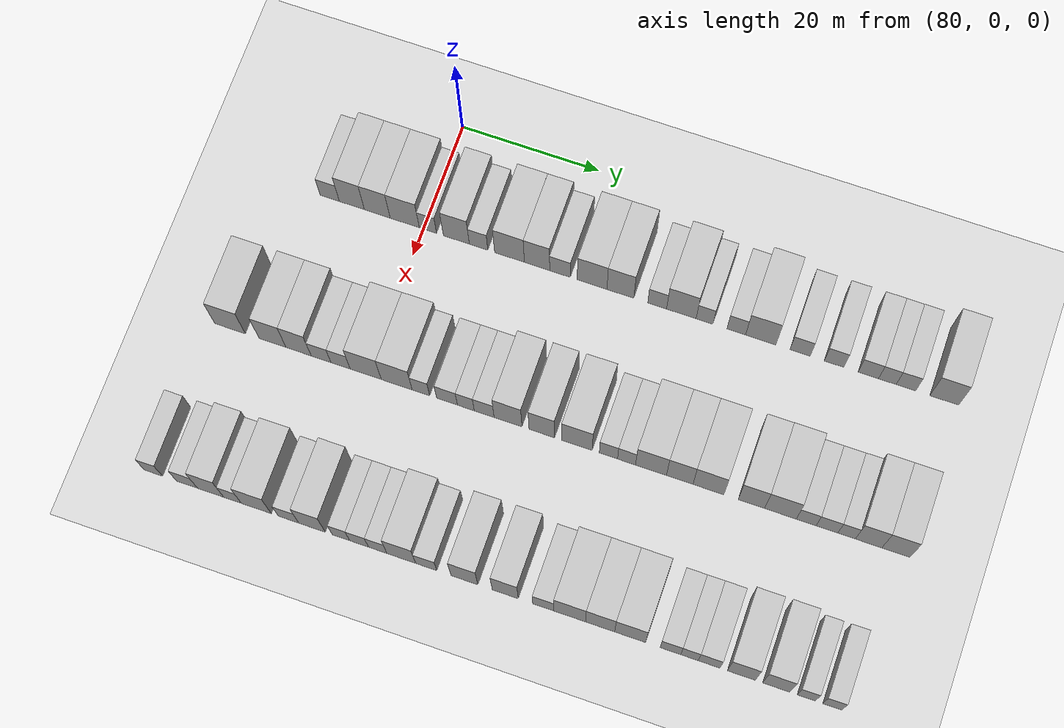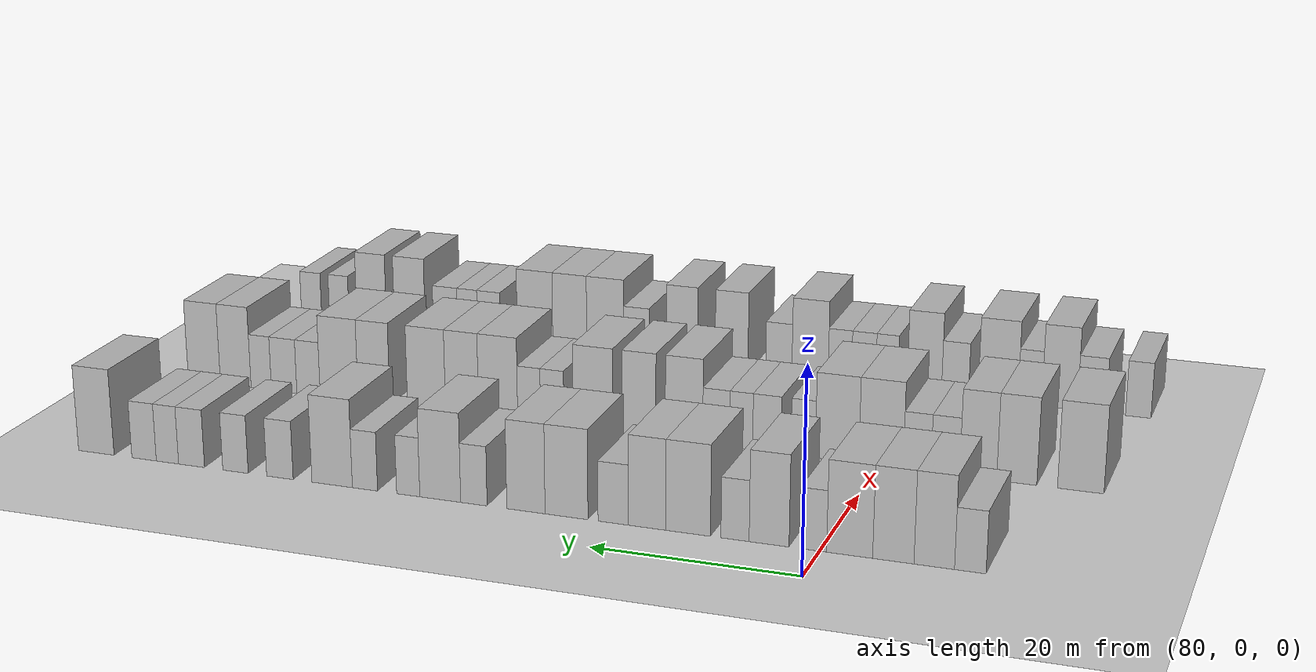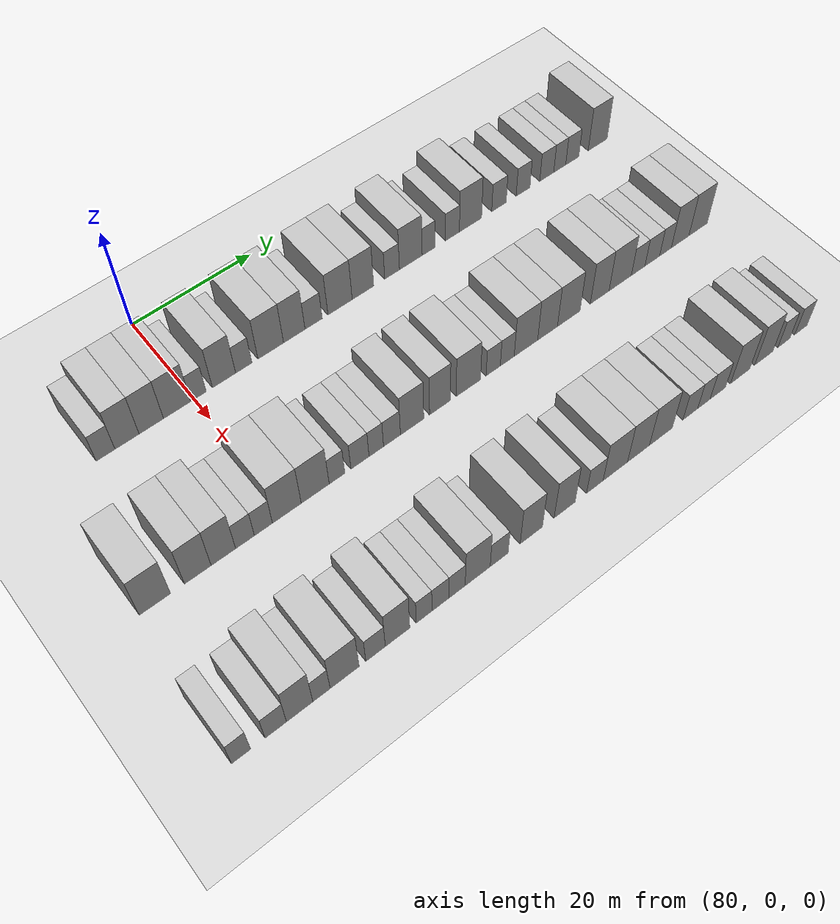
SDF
<sdf version="1.6">
 <world name="default">
  <include>
   <name>ground_plane_2</name>
   <uri>model://HANNAS_ground_plane</uri>
   <pose>100 0 0  0 0 0</pose>
  </include>
  <model name="building_663">
   <static>1</static>
   <pose>91.0000 -13.7585 0 0.000000 0.000000 0.000000</pose>
   <link name="link">
    <pose>0 0 3.00 0 0 0</pose>
    <collision name="collision"><geometry><box><size>10.0000 2.8491 6.0000</size></box></geometry></collision>
    <visual name="visual">
     <cast_shadows>0</cast_shadows>
     <geometry><box><size>10.0000 2.8491 6.0000</size></box></geometry>
     <material>
      <script>
       <uri>model://HANNAS_wall/materials/scripts</uri>
       <uri>model://HANNAS_wall/materials/textures</uri>
       <name>vrc/HANNAS_wall</name>
      </script>
     </material>
    </visual>
   </link>
  </model>
  <model name="building_664">
   <static>1</static>
   <pose>91.0000 -10.4909 0 0.000000 0.000000 0.000000</pose>
   <link name="link">
    <pose>0 0 4.50 0 0 0</pose>
    <collision name="collision"><geometry><box><size>10.0000 3.6860 9.0000</size></box></geometry></collision>
    <visual name="visual">
     <cast_shadows>0</cast_shadows>
     <geometry><box><size>10.0000 3.6860 9.0000</size></box></geometry>
     <material>
      <script>
       <uri>model://HANNAS_wall/materials/scripts</uri>
       <uri>model://HANNAS_wall/materials/textures</uri>
       <name>vrc/HANNAS_wall</name>
      </script>
     </material>
    </visual>
   </link>
  </model>
  <model name="building_665">
   <static>1</static>
   <pose>91.0000 -6.7507 0 0.000000 0.000000 0.000000</pose>
   <link name="link">
    <pose>0 0 4.50 0 0 0</pose>
    <collision name="collision"><geometry><box><size>10.0000 3.7944 9.0000</size></box></geometry></collision>
    <visual name="visual">
     <cast_shadows>0</cast_shadows>
     <geometry><box><size>10.0000 3.7944 9.0000</size></box></geometry>
     <material>
      <script>
       <uri>model://HANNAS_wall/materials/scripts</uri>
       <uri>model://HANNAS_wall/materials/textures</uri>
       <name>vrc/HANNAS_wall</name>
      </script>
     </material>
    </visual>
   </link>
  </model>
  <model name="building_666">
   <static>1</static>
   <pose>91.0000 -2.7150 0 0.000000 0.000000 0.000000</pose>
   <link name="link">
    <pose>0 0 4.50 0 0 0</pose>
    <collision name="collision"><geometry><box><size>10.0000 4.2770 9.0000</size></box></geometry></collision>
    <visual name="visual">
     <cast_shadows>0</cast_shadows>
     <geometry><box><size>10.0000 4.2770 9.0000</size></box></geometry>
     <material>
      <script>
       <uri>model://HANNAS_wall/materials/scripts</uri>
       <uri>model://HANNAS_wall/materials/textures</uri>
       <name>vrc/HANNAS_wall</name>
      </script>
     </material>
    </visual>
   </link>
  </model>
  <model name="building_667">
   <static>1</static>
   <pose>91.0000 0.6828 0 0.000000 0.000000 0.000000</pose>
   <link name="link">
    <pose>0 0 3.00 0 0 0</pose>
    <collision name="collision"><geometry><box><size>10.0000 2.5185 6.0000</size></box></geometry></collision>
    <visual name="visual">
     <cast_shadows>0</cast_shadows>
     <geometry><box><size>10.0000 2.5185 6.0000</size></box></geometry>
     <material>
      <script>
       <uri>model://HANNAS_wall/materials/scripts</uri>
       <uri>model://HANNAS_wall/materials/textures</uri>
       <name>vrc/HANNAS_wall</name>
      </script>
     </material>
    </visual>
   </link>
  </model>
  <model name="building_668">
   <static>1</static>
   <pose>91.0000 4.8339 0 0.000000 0.000000 0.000000</pose>
   <link name="link">
    <pose>0 0 4.50 0 0 0</pose>
    <collision name="collision"><geometry><box><size>10.0000 3.7837 9.0000</size></box></geometry></collision>
    <visual name="visual">
     <cast_shadows>0</cast_shadows>
     <geometry><box><size>10.0000 3.7837 9.0000</size></box></geometry>
     <material>
      <script>
       <uri>model://HANNAS_wall/materials/scripts</uri>
       <uri>model://HANNAS_wall/materials/textures</uri>
       <name>vrc/HANNAS_wall</name>
      </script>
     </material>
    </visual>
   </link>
  </model>
  <model name="building_669">
   <static>1</static>
   <pose>91.0000 8.0732 0 0.000000 0.000000 0.000000</pose>
   <link name="link">
    <pose>0 0 3.00 0 0 0</pose>
    <collision name="collision"><geometry><box><size>10.0000 2.6949 6.0000</size></box></geometry></collision>
    <visual name="visual">
     <cast_shadows>0</cast_shadows>
     <geometry><box><size>10.0000 2.6949 6.0000</size></box></geometry>
     <material>
      <script>
       <uri>model://HANNAS_wall/materials/scripts</uri>
       <uri>model://HANNAS_wall/materials/textures</uri>
       <name>vrc/HANNAS_wall</name>
      </script>
     </material>
    </visual>
   </link>
  </model>
  <model name="building_670">
   <static>1</static>
   <pose>91.0000 12.5786 0 0.000000 0.000000 0.000000</pose>
   <link name="link">
    <pose>0 0 4.50 0 0 0</pose>
    <collision name="collision"><geometry><box><size>10.0000 4.3159 9.0000</size></box></geometry></collision>
    <visual name="visual">
     <cast_shadows>0</cast_shadows>
     <geometry><box><size>10.0000 4.3159 9.0000</size></box></geometry>
     <material>
      <script>
       <uri>model://HANNAS_wall/materials/scripts</uri>
       <uri>model://HANNAS_wall/materials/textures</uri>
       <name>vrc/HANNAS_wall</name>
      </script>
     </material>
    </visual>
   </link>
  </model>
  <model name="building_671">
   <static>1</static>
   <pose>91.0000 16.5746 0 0.000000 0.000000 0.000000</pose>
   <link name="link">
    <pose>0 0 4.50 0 0 0</pose>
    <collision name="collision"><geometry><box><size>10.0000 3.6760 9.0000</size></box></geometry></collision>
    <visual name="visual">
     <cast_shadows>0</cast_shadows>
     <geometry><box><size>10.0000 3.6760 9.0000</size></box></geometry>
     <material>
      <script>
       <uri>model://HANNAS_wall/materials/scripts</uri>
       <uri>model://HANNAS_wall/materials/textures</uri>
       <name>vrc/HANNAS_wall</name>
      </script>
     </material>
    </visual>
   </link>
  </model>
  <model name="building_672">
   <static>1</static>
   <pose>91.0000 19.9013 0 0.000000 0.000000 0.000000</pose>
   <link name="link">
    <pose>0 0 3.00 0 0 0</pose>
    <collision name="collision"><geometry><box><size>10.0000 2.9775 6.0000</size></box></geometry></collision>
    <visual name="visual">
     <cast_shadows>0</cast_shadows>
     <geometry><box><size>10.0000 2.9775 6.0000</size></box></geometry>
     <material>
      <script>
       <uri>model://HANNAS_wall/materials/scripts</uri>
       <uri>model://HANNAS_wall/materials/textures</uri>
       <name>vrc/HANNAS_wall</name>
      </script>
     </material>
    </visual>
   </link>
  </model>
  <model name="building_673">
   <static>1</static>
   <pose>91.0000 24.5314 0 0.000000 0.000000 0.000000</pose>
   <link name="link">
    <pose>0 0 4.50 0 0 0</pose>
    <collision name="collision"><geometry><box><size>10.0000 4.2827 9.0000</size></box></geometry></collision>
    <visual name="visual">
     <cast_shadows>0</cast_shadows>
     <geometry><box><size>10.0000 4.2827 9.0000</size></box></geometry>
     <material>
      <script>
       <uri>model://HANNAS_wall/materials/scripts</uri>
       <uri>model://HANNAS_wall/materials/textures</uri>
       <name>vrc/HANNAS_wall</name>
      </script>
     </material>
    </visual>
   </link>
  </model>
  <model name="building_674">
   <static>1</static>
   <pose>91.0000 28.6038 0 0.000000 0.000000 0.000000</pose>
   <link name="link">
    <pose>0 0 4.50 0 0 0</pose>
    <collision name="collision"><geometry><box><size>10.0000 3.8620 9.0000</size></box></geometry></collision>
    <visual name="visual">
     <cast_shadows>0</cast_shadows>
     <geometry><box><size>10.0000 3.8620 9.0000</size></box></geometry>
     <material>
      <script>
       <uri>model://HANNAS_wall/materials/scripts</uri>
       <uri>model://HANNAS_wall/materials/textures</uri>
       <name>vrc/HANNAS_wall</name>
      </script>
     </material>
    </visual>
   </link>
  </model>
  <model name="building_675">
   <static>1</static>
   <pose>91.0000 33.8855 0 0.000000 0.000000 0.000000</pose>
   <link name="link">
    <pose>0 0 3.00 0 0 0</pose>
    <collision name="collision"><geometry><box><size>10.0000 2.7014 6.0000</size></box></geometry></collision>
    <visual name="visual">
     <cast_shadows>0</cast_shadows>
     <geometry><box><size>10.0000 2.7014 6.0000</size></box></geometry>
     <material>
      <script>
       <uri>model://HANNAS_wall/materials/scripts</uri>
       <uri>model://HANNAS_wall/materials/textures</uri>
       <name>vrc/HANNAS_wall</name>
      </script>
     </material>
    </visual>
   </link>
  </model>
  <model name="building_676">
   <static>1</static>
   <pose>91.0000 37.3459 0 0.000000 0.000000 0.000000</pose>
   <link name="link">
    <pose>0 0 4.50 0 0 0</pose>
    <collision name="collision"><geometry><box><size>10.0000 4.2194 9.0000</size></box></geometry></collision>
    <visual name="visual">
     <cast_shadows>0</cast_shadows>
     <geometry><box><size>10.0000 4.2194 9.0000</size></box></geometry>
     <material>
      <script>
       <uri>model://HANNAS_wall/materials/scripts</uri>
       <uri>model://HANNAS_wall/materials/textures</uri>
       <name>vrc/HANNAS_wall</name>
      </script>
     </material>
    </visual>
   </link>
  </model>
  <model name="building_677">
   <static>1</static>
   <pose>91.0000 40.6593 0 0.000000 0.000000 0.000000</pose>
   <link name="link">
    <pose>0 0 3.00 0 0 0</pose>
    <collision name="collision"><geometry><box><size>10.0000 2.4073 6.0000</size></box></geometry></collision>
    <visual name="visual">
     <cast_shadows>0</cast_shadows>
     <geometry><box><size>10.0000 2.4073 6.0000</size></box></geometry>
     <material>
      <script>
       <uri>model://HANNAS_wall/materials/scripts</uri>
       <uri>model://HANNAS_wall/materials/textures</uri>
       <name>vrc/HANNAS_wall</name>
      </script>
     </material>
    </visual>
   </link>
  </model>
  <model name="building_678">
   <static>1</static>
   <pose>91.0000 45.1895 0 0.000000 0.000000 0.000000</pose>
   <link name="link">
    <pose>0 0 3.00 0 0 0</pose>
    <collision name="collision"><geometry><box><size>10.0000 2.6532 6.0000</size></box></geometry></collision>
    <visual name="visual">
     <cast_shadows>0</cast_shadows>
     <geometry><box><size>10.0000 2.6532 6.0000</size></box></geometry>
     <material>
      <script>
       <uri>model://HANNAS_wall/materials/scripts</uri>
       <uri>model://HANNAS_wall/materials/textures</uri>
       <name>vrc/HANNAS_wall</name>
      </script>
     </material>
    </visual>
   </link>
  </model>
  <model name="building_679">
   <static>1</static>
   <pose>91.0000 48.6653 0 0.000000 0.000000 0.000000</pose>
   <link name="link">
    <pose>0 0 4.50 0 0 0</pose>
    <collision name="collision"><geometry><box><size>10.0000 4.2983 9.0000</size></box></geometry></collision>
    <visual name="visual">
     <cast_shadows>0</cast_shadows>
     <geometry><box><size>10.0000 4.2983 9.0000</size></box></geometry>
     <material>
      <script>
       <uri>model://HANNAS_wall/materials/scripts</uri>
       <uri>model://HANNAS_wall/materials/textures</uri>
       <name>vrc/HANNAS_wall</name>
      </script>
     </material>
    </visual>
   </link>
  </model>
  <model name="building_680">
   <static>1</static>
   <pose>91.0000 54.2449 0 0.000000 0.000000 0.000000</pose>
   <link name="link">
    <pose>0 0 3.00 0 0 0</pose>
    <collision name="collision"><geometry><box><size>10.0000 2.8609 6.0000</size></box></geometry></collision>
    <visual name="visual">
     <cast_shadows>0</cast_shadows>
     <geometry><box><size>10.0000 2.8609 6.0000</size></box></geometry>
     <material>
      <script>
       <uri>model://HANNAS_wall/materials/scripts</uri>
       <uri>model://HANNAS_wall/materials/textures</uri>
       <name>vrc/HANNAS_wall</name>
      </script>
     </material>
    </visual>
   </link>
  </model>
  <model name="building_681">
   <static>1</static>
   <pose>91.0000 59.0615 0 0.000000 0.000000 0.000000</pose>
   <link name="link">
    <pose>0 0 3.00 0 0 0</pose>
    <collision name="collision"><geometry><box><size>10.0000 2.7723 6.0000</size></box></geometry></collision>
    <visual name="visual">
     <cast_shadows>0</cast_shadows>
     <geometry><box><size>10.0000 2.7723 6.0000</size></box></geometry>
     <material>
      <script>
       <uri>model://HANNAS_wall/materials/scripts</uri>
       <uri>model://HANNAS_wall/materials/textures</uri>
       <name>vrc/HANNAS_wall</name>
      </script>
     </material>
    </visual>
   </link>
  </model>
  <model name="building_682">
   <static>1</static>
   <pose>91.0000 63.8812 0 0.000000 0.000000 0.000000</pose>
   <link name="link">
    <pose>0 0 3.00 0 0 0</pose>
    <collision name="collision"><geometry><box><size>10.0000 2.8670 6.0000</size></box></geometry></collision>
    <visual name="visual">
     <cast_shadows>0</cast_shadows>
     <geometry><box><size>10.0000 2.8670 6.0000</size></box></geometry>
     <material>
      <script>
       <uri>model://HANNAS_wall/materials/scripts</uri>
       <uri>model://HANNAS_wall/materials/textures</uri>
       <name>vrc/HANNAS_wall</name>
      </script>
     </material>
    </visual>
   </link>
  </model>
  <model name="building_683">
   <static>1</static>
   <pose>91.0000 66.5522 0 0.000000 0.000000 0.000000</pose>
   <link name="link">
    <pose>0 0 3.00 0 0 0</pose>
    <collision name="collision"><geometry><box><size>10.0000 2.4750 6.0000</size></box></geometry></collision>
    <visual name="visual">
     <cast_shadows>0</cast_shadows>
     <geometry><box><size>10.0000 2.4750 6.0000</size></box></geometry>
     <material>
      <script>
       <uri>model://HANNAS_wall/materials/scripts</uri>
       <uri>model://HANNAS_wall/materials/textures</uri>
       <name>vrc/HANNAS_wall</name>
      </script>
     </material>
    </visual>
   </link>
  </model>
  <model name="building_684">
   <static>1</static>
   <pose>91.0000 69.1561 0 0.000000 0.000000 0.000000</pose>
   <link name="link">
    <pose>0 0 3.00 0 0 0</pose>
    <collision name="collision"><geometry><box><size>10.0000 2.7329 6.0000</size></box></geometry></collision>
    <visual name="visual">
     <cast_shadows>0</cast_shadows>
     <geometry><box><size>10.0000 2.7329 6.0000</size></box></geometry>
     <material>
      <script>
       <uri>model://HANNAS_wall/materials/scripts</uri>
       <uri>model://HANNAS_wall/materials/textures</uri>
       <name>vrc/HANNAS_wall</name>
      </script>
     </material>
    </visual>
   </link>
  </model>
  <model name="building_685">
   <static>1</static>
   <pose>91.0000 74.5306 0 0.000000 0.000000 0.000000</pose>
   <link name="link">
    <pose>0 0 4.50 0 0 0</pose>
    <collision name="collision"><geometry><box><size>10.0000 4.0160 9.0000</size></box></geometry></collision>
    <visual name="visual">
     <cast_shadows>0</cast_shadows>
     <geometry><box><size>10.0000 4.0160 9.0000</size></box></geometry>
     <material>
      <script>
       <uri>model://HANNAS_wall/materials/scripts</uri>
       <uri>model://HANNAS_wall/materials/textures</uri>
       <name>vrc/HANNAS_wall</name>
      </script>
     </material>
    </visual>
   </link>
  </model>
  <model name="building_831">
   <static>1</static>
   <pose>113.0000 -19.8376 0 0.000000 0.000000 0.000000</pose>
   <link name="link">
    <pose>0 0 4.50 0 0 0</pose>
    <collision name="collision"><geometry><box><size>10.0000 4.4645 9.0000</size></box></geometry></collision>
    <visual name="visual">
     <cast_shadows>0</cast_shadows>
     <geometry><box><size>10.0000 4.4645 9.0000</size></box></geometry>
     <material>
      <script>
       <uri>model://HANNAS_wall/materials/scripts</uri>
       <uri>model://HANNAS_wall/materials/textures</uri>
       <name>vrc/HANNAS_wall</name>
      </script>
     </material>
    </visual>
   </link>
  </model>
  <model name="building_832">
   <static>1</static>
   <pose>113.0000 -13.6461 0 0.000000 0.000000 0.000000</pose>
   <link name="link">
    <pose>0 0 4.50 0 0 0</pose>
    <collision name="collision"><geometry><box><size>10.0000 3.9185 9.0000</size></box></geometry></collision>
    <visual name="visual">
     <cast_shadows>0</cast_shadows>
     <geometry><box><size>10.0000 3.9185 9.0000</size></box></geometry>
     <material>
      <script>
       <uri>model://HANNAS_wall/materials/scripts</uri>
       <uri>model://HANNAS_wall/materials/textures</uri>
       <name>vrc/HANNAS_wall</name>
      </script>
     </material>
    </visual>
   </link>
  </model>
  <model name="building_833">
   <static>1</static>
   <pose>113.0000 -9.8637 0 0.000000 0.000000 0.000000</pose>
   <link name="link">
    <pose>0 0 4.50 0 0 0</pose>
    <collision name="collision"><geometry><box><size>10.0000 3.6464 9.0000</size></box></geometry></collision>
    <visual name="visual">
     <cast_shadows>0</cast_shadows>
     <geometry><box><size>10.0000 3.6464 9.0000</size></box></geometry>
     <material>
      <script>
       <uri>model://HANNAS_wall/materials/scripts</uri>
       <uri>model://HANNAS_wall/materials/textures</uri>
       <name>vrc/HANNAS_wall</name>
      </script>
     </material>
    </visual>
   </link>
  </model>
  <model name="building_834">
   <static>1</static>
   <pose>113.0000 -6.6188 0 0.000000 0.000000 0.000000</pose>
   <link name="link">
    <pose>0 0 3.00 0 0 0</pose>
    <collision name="collision"><geometry><box><size>10.0000 2.8435 6.0000</size></box></geometry></collision>
    <visual name="visual">
     <cast_shadows>0</cast_shadows>
     <geometry><box><size>10.0000 2.8435 6.0000</size></box></geometry>
     <material>
      <script>
       <uri>model://HANNAS_wall/materials/scripts</uri>
       <uri>model://HANNAS_wall/materials/textures</uri>
       <name>vrc/HANNAS_wall</name>
      </script>
     </material>
    </visual>
   </link>
  </model>
  <model name="building_835">
   <static>1</static>
   <pose>113.0000 -3.8131 0 0.000000 0.000000 0.000000</pose>
   <link name="link">
    <pose>0 0 3.00 0 0 0</pose>
    <collision name="collision"><geometry><box><size>10.0000 2.7679 6.0000</size></box></geometry></collision>
    <visual name="visual">
     <cast_shadows>0</cast_shadows>
     <geometry><box><size>10.0000 2.7679 6.0000</size></box></geometry>
     <material>
      <script>
       <uri>model://HANNAS_wall/materials/scripts</uri>
       <uri>model://HANNAS_wall/materials/textures</uri>
       <name>vrc/HANNAS_wall</name>
      </script>
     </material>
    </visual>
   </link>
  </model>
  <model name="building_836">
   <static>1</static>
   <pose>113.0000 -0.1896 0 0.000000 0.000000 0.000000</pose>
   <link name="link">
    <pose>0 0 4.50 0 0 0</pose>
    <collision name="collision"><geometry><box><size>10.0000 4.4790 9.0000</size></box></geometry></collision>
    <visual name="visual">
     <cast_shadows>0</cast_shadows>
     <geometry><box><size>10.0000 4.4790 9.0000</size></box></geometry>
     <material>
      <script>
       <uri>model://HANNAS_wall/materials/scripts</uri>
       <uri>model://HANNAS_wall/materials/textures</uri>
       <name>vrc/HANNAS_wall</name>
      </script>
     </material>
    </visual>
   </link>
  </model>
  <model name="building_837">
   <static>1</static>
   <pose>113.0000 4.2686 0 0.000000 0.000000 0.000000</pose>
   <link name="link">
    <pose>0 0 4.50 0 0 0</pose>
    <collision name="collision"><geometry><box><size>10.0000 4.4374 9.0000</size></box></geometry></collision>
    <visual name="visual">
     <cast_shadows>0</cast_shadows>
     <geometry><box><size>10.0000 4.4374 9.0000</size></box></geometry>
     <material>
      <script>
       <uri>model://HANNAS_wall/materials/scripts</uri>
       <uri>model://HANNAS_wall/materials/textures</uri>
       <name>vrc/HANNAS_wall</name>
      </script>
     </material>
    </visual>
   </link>
  </model>
  <model name="building_838">
   <static>1</static>
   <pose>113.0000 7.7424 0 0.000000 0.000000 0.000000</pose>
   <link name="link">
    <pose>0 0 3.00 0 0 0</pose>
    <collision name="collision"><geometry><box><size>10.0000 2.5102 6.0000</size></box></geometry></collision>
    <visual name="visual">
     <cast_shadows>0</cast_shadows>
     <geometry><box><size>10.0000 2.5102 6.0000</size></box></geometry>
     <material>
      <script>
       <uri>model://HANNAS_wall/materials/scripts</uri>
       <uri>model://HANNAS_wall/materials/textures</uri>
       <name>vrc/HANNAS_wall</name>
      </script>
     </material>
    </visual>
   </link>
  </model>
  <model name="building_839">
   <static>1</static>
   <pose>113.0000 11.4750 0 0.000000 0.000000 0.000000</pose>
   <link name="link">
    <pose>0 0 3.00 0 0 0</pose>
    <collision name="collision"><geometry><box><size>10.0000 2.9551 6.0000</size></box></geometry></collision>
    <visual name="visual">
     <cast_shadows>0</cast_shadows>
     <geometry><box><size>10.0000 2.9551 6.0000</size></box></geometry>
     <material>
      <script>
       <uri>model://HANNAS_wall/materials/scripts</uri>
       <uri>model://HANNAS_wall/materials/textures</uri>
       <name>vrc/HANNAS_wall</name>
      </script>
     </material>
    </visual>
   </link>
  </model>
  <model name="building_840">
   <static>1</static>
   <pose>113.0000 14.1538 0 0.000000 0.000000 0.000000</pose>
   <link name="link">
    <pose>0 0 3.00 0 0 0</pose>
    <collision name="collision"><geometry><box><size>10.0000 2.4025 6.0000</size></box></geometry></collision>
    <visual name="visual">
     <cast_shadows>0</cast_shadows>
     <geometry><box><size>10.0000 2.4025 6.0000</size></box></geometry>
     <material>
      <script>
       <uri>model://HANNAS_wall/materials/scripts</uri>
       <uri>model://HANNAS_wall/materials/textures</uri>
       <name>vrc/HANNAS_wall</name>
      </script>
     </material>
    </visual>
   </link>
  </model>
  <model name="building_841">
   <static>1</static>
   <pose>113.0000 16.7705 0 0.000000 0.000000 0.000000</pose>
   <link name="link">
    <pose>0 0 3.00 0 0 0</pose>
    <collision name="collision"><geometry><box><size>10.0000 2.8307 6.0000</size></box></geometry></collision>
    <visual name="visual">
     <cast_shadows>0</cast_shadows>
     <geometry><box><size>10.0000 2.8307 6.0000</size></box></geometry>
     <material>
      <script>
       <uri>model://HANNAS_wall/materials/scripts</uri>
       <uri>model://HANNAS_wall/materials/textures</uri>
       <name>vrc/HANNAS_wall</name>
      </script>
     </material>
    </visual>
   </link>
  </model>
  <model name="building_842">
   <static>1</static>
   <pose>113.0000 20.1664 0 0.000000 0.000000 0.000000</pose>
   <link name="link">
    <pose>0 0 4.50 0 0 0</pose>
    <collision name="collision"><geometry><box><size>10.0000 3.9612 9.0000</size></box></geometry></collision>
    <visual name="visual">
     <cast_shadows>0</cast_shadows>
     <geometry><box><size>10.0000 3.9612 9.0000</size></box></geometry>
     <material>
      <script>
       <uri>model://HANNAS_wall/materials/scripts</uri>
       <uri>model://HANNAS_wall/materials/textures</uri>
       <name>vrc/HANNAS_wall</name>
      </script>
     </material>
    </visual>
   </link>
  </model>
  <model name="building_843">
   <static>1</static>
   <pose>113.0000 24.9545 0 0.000000 0.000000 0.000000</pose>
   <link name="link">
    <pose>0 0 4.50 0 0 0</pose>
    <collision name="collision"><geometry><box><size>10.0000 3.6151 9.0000</size></box></geometry></collision>
    <visual name="visual">
     <cast_shadows>0</cast_shadows>
     <geometry><box><size>10.0000 3.6151 9.0000</size></box></geometry>
     <material>
      <script>
       <uri>model://HANNAS_wall/materials/scripts</uri>
       <uri>model://HANNAS_wall/materials/textures</uri>
       <name>vrc/HANNAS_wall</name>
      </script>
     </material>
    </visual>
   </link>
  </model>
  <model name="building_844">
   <static>1</static>
   <pose>113.0000 29.9157 0 0.000000 0.000000 0.000000</pose>
   <link name="link">
    <pose>0 0 4.50 0 0 0</pose>
    <collision name="collision"><geometry><box><size>10.0000 4.3073 9.0000</size></box></geometry></collision>
    <visual name="visual">
     <cast_shadows>0</cast_shadows>
     <geometry><box><size>10.0000 4.3073 9.0000</size></box></geometry>
     <material>
      <script>
       <uri>model://HANNAS_wall/materials/scripts</uri>
       <uri>model://HANNAS_wall/materials/textures</uri>
       <name>vrc/HANNAS_wall</name>
      </script>
     </material>
    </visual>
   </link>
  </model>
  <model name="building_845">
   <static>1</static>
   <pose>113.0000 34.3530 0 0.000000 0.000000 0.000000</pose>
   <link name="link">
    <pose>0 0 3.00 0 0 0</pose>
    <collision name="collision"><geometry><box><size>10.0000 2.5672 6.0000</size></box></geometry></collision>
    <visual name="visual">
     <cast_shadows>0</cast_shadows>
     <geometry><box><size>10.0000 2.5672 6.0000</size></box></geometry>
     <material>
      <script>
       <uri>model://HANNAS_wall/materials/scripts</uri>
       <uri>model://HANNAS_wall/materials/textures</uri>
       <name>vrc/HANNAS_wall</name>
      </script>
     </material>
    </visual>
   </link>
  </model>
  <model name="building_846">
   <static>1</static>
   <pose>113.0000 36.8975 0 0.000000 0.000000 0.000000</pose>
   <link name="link">
    <pose>0 0 3.00 0 0 0</pose>
    <collision name="collision"><geometry><box><size>10.0000 2.5219 6.0000</size></box></geometry></collision>
    <visual name="visual">
     <cast_shadows>0</cast_shadows>
     <geometry><box><size>10.0000 2.5219 6.0000</size></box></geometry>
     <material>
      <script>
       <uri>model://HANNAS_wall/materials/scripts</uri>
       <uri>model://HANNAS_wall/materials/textures</uri>
       <name>vrc/HANNAS_wall</name>
      </script>
     </material>
    </visual>
   </link>
  </model>
  <model name="building_847">
   <static>1</static>
   <pose>113.0000 40.3296 0 0.000000 0.000000 0.000000</pose>
   <link name="link">
    <pose>0 0 4.50 0 0 0</pose>
    <collision name="collision"><geometry><box><size>10.0000 4.3423 9.0000</size></box></geometry></collision>
    <visual name="visual">
     <cast_shadows>0</cast_shadows>
     <geometry><box><size>10.0000 4.3423 9.0000</size></box></geometry>
     <material>
      <script>
       <uri>model://HANNAS_wall/materials/scripts</uri>
       <uri>model://HANNAS_wall/materials/textures</uri>
       <name>vrc/HANNAS_wall</name>
      </script>
     </material>
    </visual>
   </link>
  </model>
  <model name="building_848">
   <static>1</static>
   <pose>113.0000 44.3577 0 0.000000 0.000000 0.000000</pose>
   <link name="link">
    <pose>0 0 4.50 0 0 0</pose>
    <collision name="collision"><geometry><box><size>10.0000 3.7138 9.0000</size></box></geometry></collision>
    <visual name="visual">
     <cast_shadows>0</cast_shadows>
     <geometry><box><size>10.0000 3.7138 9.0000</size></box></geometry>
     <material>
      <script>
       <uri>model://HANNAS_wall/materials/scripts</uri>
       <uri>model://HANNAS_wall/materials/textures</uri>
       <name>vrc/HANNAS_wall</name>
      </script>
     </material>
    </visual>
   </link>
  </model>
  <model name="building_849">
   <static>1</static>
   <pose>113.0000 48.3670 0 0.000000 0.000000 0.000000</pose>
   <link name="link">
    <pose>0 0 4.50 0 0 0</pose>
    <collision name="collision"><geometry><box><size>10.0000 4.3049 9.0000</size></box></geometry></collision>
    <visual name="visual">
     <cast_shadows>0</cast_shadows>
     <geometry><box><size>10.0000 4.3049 9.0000</size></box></geometry>
     <material>
      <script>
       <uri>model://HANNAS_wall/materials/scripts</uri>
       <uri>model://HANNAS_wall/materials/textures</uri>
       <name>vrc/HANNAS_wall</name>
      </script>
     </material>
    </visual>
   </link>
  </model>
  <model name="building_850">
   <static>1</static>
   <pose>113.0000 54.3475 0 0.000000 0.000000 0.000000</pose>
   <link name="link">
    <pose>0 0 4.50 0 0 0</pose>
    <collision name="collision"><geometry><box><size>10.0000 3.6563 9.0000</size></box></geometry></collision>
    <visual name="visual">
     <cast_shadows>0</cast_shadows>
     <geometry><box><size>10.0000 3.6563 9.0000</size></box></geometry>
     <material>
      <script>
       <uri>model://HANNAS_wall/materials/scripts</uri>
       <uri>model://HANNAS_wall/materials/textures</uri>
       <name>vrc/HANNAS_wall</name>
      </script>
     </material>
    </visual>
   </link>
  </model>
  <model name="building_851">
   <static>1</static>
   <pose>113.0000 58.3798 0 0.000000 0.000000 0.000000</pose>
   <link name="link">
    <pose>0 0 4.50 0 0 0</pose>
    <collision name="collision"><geometry><box><size>10.0000 4.4082 9.0000</size></box></geometry></collision>
    <visual name="visual">
     <cast_shadows>0</cast_shadows>
     <geometry><box><size>10.0000 4.4082 9.0000</size></box></geometry>
     <material>
      <script>
       <uri>model://HANNAS_wall/materials/scripts</uri>
       <uri>model://HANNAS_wall/materials/textures</uri>
       <name>vrc/HANNAS_wall</name>
      </script>
     </material>
    </visual>
   </link>
  </model>
  <model name="building_852">
   <static>1</static>
   <pose>113.0000 61.9531 0 0.000000 0.000000 0.000000</pose>
   <link name="link">
    <pose>0 0 3.00 0 0 0</pose>
    <collision name="collision"><geometry><box><size>10.0000 2.7385 6.0000</size></box></geometry></collision>
    <visual name="visual">
     <cast_shadows>0</cast_shadows>
     <geometry><box><size>10.0000 2.7385 6.0000</size></box></geometry>
     <material>
      <script>
       <uri>model://HANNAS_wall/materials/scripts</uri>
       <uri>model://HANNAS_wall/materials/textures</uri>
       <name>vrc/HANNAS_wall</name>
      </script>
     </material>
    </visual>
   </link>
  </model>
  <model name="building_853">
   <static>1</static>
   <pose>113.0000 64.8192 0 0.000000 0.000000 0.000000</pose>
   <link name="link">
    <pose>0 0 3.00 0 0 0</pose>
    <collision name="collision"><geometry><box><size>10.0000 2.9939 6.0000</size></box></geometry></collision>
    <visual name="visual">
     <cast_shadows>0</cast_shadows>
     <geometry><box><size>10.0000 2.9939 6.0000</size></box></geometry>
     <material>
      <script>
       <uri>model://HANNAS_wall/materials/scripts</uri>
       <uri>model://HANNAS_wall/materials/textures</uri>
       <name>vrc/HANNAS_wall</name>
      </script>
     </material>
    </visual>
   </link>
  </model>
  <model name="building_854">
   <static>1</static>
   <pose>113.0000 67.5208 0 0.000000 0.000000 0.000000</pose>
   <link name="link">
    <pose>0 0 3.00 0 0 0</pose>
    <collision name="collision"><geometry><box><size>10.0000 2.4092 6.0000</size></box></geometry></collision>
    <visual name="visual">
     <cast_shadows>0</cast_shadows>
     <geometry><box><size>10.0000 2.4092 6.0000</size></box></geometry>
     <material>
      <script>
       <uri>model://HANNAS_wall/materials/scripts</uri>
       <uri>model://HANNAS_wall/materials/textures</uri>
       <name>vrc/HANNAS_wall</name>
      </script>
     </material>
    </visual>
   </link>
  </model>
  <model name="building_855">
   <static>1</static>
   <pose>113.0000 70.5534 0 0.000000 0.000000 0.000000</pose>
   <link name="link">
    <pose>0 0 4.50 0 0 0</pose>
    <collision name="collision"><geometry><box><size>10.0000 3.6560 9.0000</size></box></geometry></collision>
    <visual name="visual">
     <cast_shadows>0</cast_shadows>
     <geometry><box><size>10.0000 3.6560 9.0000</size></box></geometry>
     <material>
      <script>
       <uri>model://HANNAS_wall/materials/scripts</uri>
       <uri>model://HANNAS_wall/materials/textures</uri>
       <name>vrc/HANNAS_wall</name>
      </script>
     </material>
    </visual>
   </link>
  </model>
  <model name="building_856">
   <static>1</static>
   <pose>113.0000 74.3096 0 0.000000 0.000000 0.000000</pose>
   <link name="link">
    <pose>0 0 4.50 0 0 0</pose>
    <collision name="collision"><geometry><box><size>10.0000 3.8566 9.0000</size></box></geometry></collision>
    <visual name="visual">
     <cast_shadows>0</cast_shadows>
     <geometry><box><size>10.0000 3.8566 9.0000</size></box></geometry>
     <material>
      <script>
       <uri>model://HANNAS_wall/materials/scripts</uri>
       <uri>model://HANNAS_wall/materials/textures</uri>
       <name>vrc/HANNAS_wall</name>
      </script>
     </material>
    </visual>
   </link>
  </model>
  <model name="building_1019">
   <static>1</static>
   <pose>135.0000 -22.0573 0 0.000000 0.000000 0.000000</pose>
   <link name="link">
    <pose>0 0 3.00 0 0 0</pose>
    <collision name="collision"><geometry><box><size>10.0000 2.6184 6.0000</size></box></geometry></collision>
    <visual name="visual">
     <cast_shadows>0</cast_shadows>
     <geometry><box><size>10.0000 2.6184 6.0000</size></box></geometry>
     <material>
      <script>
       <uri>model://HANNAS_wall/materials/scripts</uri>
       <uri>model://HANNAS_wall/materials/textures</uri>
       <name>vrc/HANNAS_wall</name>
      </script>
     </material>
    </visual>
   </link>
  </model>
  <model name="building_1020">
   <static>1</static>
   <pose>135.0000 -17.2483 0 0.000000 0.000000 0.000000</pose>
   <link name="link">
    <pose>0 0 3.00 0 0 0</pose>
    <collision name="collision"><geometry><box><size>10.0000 2.9996 6.0000</size></box></geometry></collision>
    <visual name="visual">
     <cast_shadows>0</cast_shadows>
     <geometry><box><size>10.0000 2.9996 6.0000</size></box></geometry>
     <material>
      <script>
       <uri>model://HANNAS_wall/materials/scripts</uri>
       <uri>model://HANNAS_wall/materials/textures</uri>
       <name>vrc/HANNAS_wall</name>
      </script>
     </material>
    </visual>
   </link>
  </model>
  <model name="building_1021">
   <static>1</static>
   <pose>135.0000 -13.8776 0 0.000000 0.000000 0.000000</pose>
   <link name="link">
    <pose>0 0 4.50 0 0 0</pose>
    <collision name="collision"><geometry><box><size>10.0000 3.7419 9.0000</size></box></geometry></collision>
    <visual name="visual">
     <cast_shadows>0</cast_shadows>
     <geometry><box><size>10.0000 3.7419 9.0000</size></box></geometry>
     <material>
      <script>
       <uri>model://HANNAS_wall/materials/scripts</uri>
       <uri>model://HANNAS_wall/materials/textures</uri>
       <name>vrc/HANNAS_wall</name>
      </script>
     </material>
    </visual>
   </link>
  </model>
  <model name="building_1022">
   <static>1</static>
   <pose>135.0000 -10.7535 0 0.000000 0.000000 0.000000</pose>
   <link name="link">
    <pose>0 0 3.00 0 0 0</pose>
    <collision name="collision"><geometry><box><size>10.0000 2.5062 6.0000</size></box></geometry></collision>
    <visual name="visual">
     <cast_shadows>0</cast_shadows>
     <geometry><box><size>10.0000 2.5062 6.0000</size></box></geometry>
     <material>
      <script>
       <uri>model://HANNAS_wall/materials/scripts</uri>
       <uri>model://HANNAS_wall/materials/textures</uri>
       <name>vrc/HANNAS_wall</name>
      </script>
     </material>
    </visual>
   </link>
  </model>
  <model name="building_1023">
   <static>1</static>
   <pose>135.0000 -7.3761 0 0.000000 0.000000 0.000000</pose>
   <link name="link">
    <pose>0 0 4.50 0 0 0</pose>
    <collision name="collision"><geometry><box><size>10.0000 4.2486 9.0000</size></box></geometry></collision>
    <visual name="visual">
     <cast_shadows>0</cast_shadows>
     <geometry><box><size>10.0000 4.2486 9.0000</size></box></geometry>
     <material>
      <script>
       <uri>model://HANNAS_wall/materials/scripts</uri>
       <uri>model://HANNAS_wall/materials/textures</uri>
       <name>vrc/HANNAS_wall</name>
      </script>
     </material>
    </visual>
   </link>
  </model>
  <model name="building_1024">
   <static>1</static>
   <pose>135.0000 -2.7954 0 0.000000 0.000000 0.000000</pose>
   <link name="link">
    <pose>0 0 3.00 0 0 0</pose>
    <collision name="collision"><geometry><box><size>10.0000 2.9129 6.0000</size></box></geometry></collision>
    <visual name="visual">
     <cast_shadows>0</cast_shadows>
     <geometry><box><size>10.0000 2.9129 6.0000</size></box></geometry>
     <material>
      <script>
       <uri>model://HANNAS_wall/materials/scripts</uri>
       <uri>model://HANNAS_wall/materials/textures</uri>
       <name>vrc/HANNAS_wall</name>
      </script>
     </material>
    </visual>
   </link>
  </model>
  <model name="building_1025">
   <static>1</static>
   <pose>135.0000 0.5253 0 0.000000 0.000000 0.000000</pose>
   <link name="link">
    <pose>0 0 4.50 0 0 0</pose>
    <collision name="collision"><geometry><box><size>10.0000 3.7284 9.0000</size></box></geometry></collision>
    <visual name="visual">
     <cast_shadows>0</cast_shadows>
     <geometry><box><size>10.0000 3.7284 9.0000</size></box></geometry>
     <material>
      <script>
       <uri>model://HANNAS_wall/materials/scripts</uri>
       <uri>model://HANNAS_wall/materials/textures</uri>
       <name>vrc/HANNAS_wall</name>
      </script>
     </material>
    </visual>
   </link>
  </model>
  <model name="building_1026">
   <static>1</static>
   <pose>135.0000 4.6064 0 0.000000 0.000000 0.000000</pose>
   <link name="link">
    <pose>0 0 3.00 0 0 0</pose>
    <collision name="collision"><geometry><box><size>10.0000 2.4339 6.0000</size></box></geometry></collision>
    <visual name="visual">
     <cast_shadows>0</cast_shadows>
     <geometry><box><size>10.0000 2.4339 6.0000</size></box></geometry>
     <material>
      <script>
       <uri>model://HANNAS_wall/materials/scripts</uri>
       <uri>model://HANNAS_wall/materials/textures</uri>
       <name>vrc/HANNAS_wall</name>
      </script>
     </material>
    </visual>
   </link>
  </model>
  <model name="building_1027">
   <static>1</static>
   <pose>135.0000 7.1509 0 0.000000 0.000000 0.000000</pose>
   <link name="link">
    <pose>0 0 3.00 0 0 0</pose>
    <collision name="collision"><geometry><box><size>10.0000 2.6553 6.0000</size></box></geometry></collision>
    <visual name="visual">
     <cast_shadows>0</cast_shadows>
     <geometry><box><size>10.0000 2.6553 6.0000</size></box></geometry>
     <material>
      <script>
       <uri>model://HANNAS_wall/materials/scripts</uri>
       <uri>model://HANNAS_wall/materials/textures</uri>
       <name>vrc/HANNAS_wall</name>
      </script>
     </material>
    </visual>
   </link>
  </model>
  <model name="building_1028">
   <static>1</static>
   <pose>135.0000 9.7743 0 0.000000 0.000000 0.000000</pose>
   <link name="link">
    <pose>0 0 3.00 0 0 0</pose>
    <collision name="collision"><geometry><box><size>10.0000 2.5914 6.0000</size></box></geometry></collision>
    <visual name="visual">
     <cast_shadows>0</cast_shadows>
     <geometry><box><size>10.0000 2.5914 6.0000</size></box></geometry>
     <material>
      <script>
       <uri>model://HANNAS_wall/materials/scripts</uri>
       <uri>model://HANNAS_wall/materials/textures</uri>
       <name>vrc/HANNAS_wall</name>
      </script>
     </material>
    </visual>
   </link>
  </model>
  <model name="building_1029">
   <static>1</static>
   <pose>135.0000 13.0879 0 0.000000 0.000000 0.000000</pose>
   <link name="link">
    <pose>0 0 4.50 0 0 0</pose>
    <collision name="collision"><geometry><box><size>10.0000 4.0358 9.0000</size></box></geometry></collision>
    <visual name="visual">
     <cast_shadows>0</cast_shadows>
     <geometry><box><size>10.0000 4.0358 9.0000</size></box></geometry>
     <material>
      <script>
       <uri>model://HANNAS_wall/materials/scripts</uri>
       <uri>model://HANNAS_wall/materials/textures</uri>
       <name>vrc/HANNAS_wall</name>
      </script>
     </material>
    </visual>
   </link>
  </model>
  <model name="building_1030">
   <static>1</static>
   <pose>135.0000 16.5751 0 0.000000 0.000000 0.000000</pose>
   <link name="link">
    <pose>0 0 3.00 0 0 0</pose>
    <collision name="collision"><geometry><box><size>10.0000 2.9386 6.0000</size></box></geometry></collision>
    <visual name="visual">
     <cast_shadows>0</cast_shadows>
     <geometry><box><size>10.0000 2.9386 6.0000</size></box></geometry>
     <material>
      <script>
       <uri>model://HANNAS_wall/materials/scripts</uri>
       <uri>model://HANNAS_wall/materials/textures</uri>
       <name>vrc/HANNAS_wall</name>
      </script>
     </material>
    </visual>
   </link>
  </model>
  <model name="building_1031">
   <static>1</static>
   <pose>135.0000 21.9108 0 0.000000 0.000000 0.000000</pose>
   <link name="link">
    <pose>0 0 4.50 0 0 0</pose>
    <collision name="collision"><geometry><box><size>10.0000 3.7329 9.0000</size></box></geometry></collision>
    <visual name="visual">
     <cast_shadows>0</cast_shadows>
     <geometry><box><size>10.0000 3.7329 9.0000</size></box></geometry>
     <material>
      <script>
       <uri>model://HANNAS_wall/materials/scripts</uri>
       <uri>model://HANNAS_wall/materials/textures</uri>
       <name>vrc/HANNAS_wall</name>
      </script>
     </material>
    </visual>
   </link>
  </model>
  <model name="building_1032">
   <static>1</static>
   <pose>135.0000 27.5801 0 0.000000 0.000000 0.000000</pose>
   <link name="link">
    <pose>0 0 4.50 0 0 0</pose>
    <collision name="collision"><geometry><box><size>10.0000 3.6057 9.0000</size></box></geometry></collision>
    <visual name="visual">
     <cast_shadows>0</cast_shadows>
     <geometry><box><size>10.0000 3.6057 9.0000</size></box></geometry>
     <material>
      <script>
       <uri>model://HANNAS_wall/materials/scripts</uri>
       <uri>model://HANNAS_wall/materials/textures</uri>
       <name>vrc/HANNAS_wall</name>
      </script>
     </material>
    </visual>
   </link>
  </model>
  <model name="building_1033">
   <static>1</static>
   <pose>135.0000 32.8445 0 0.000000 0.000000 0.000000</pose>
   <link name="link">
    <pose>0 0 3.00 0 0 0</pose>
    <collision name="collision"><geometry><box><size>10.0000 2.9229 6.0000</size></box></geometry></collision>
    <visual name="visual">
     <cast_shadows>0</cast_shadows>
     <geometry><box><size>10.0000 2.9229 6.0000</size></box></geometry>
     <material>
      <script>
       <uri>model://HANNAS_wall/materials/scripts</uri>
       <uri>model://HANNAS_wall/materials/textures</uri>
       <name>vrc/HANNAS_wall</name>
      </script>
     </material>
    </visual>
   </link>
  </model>
  <model name="building_1034">
   <static>1</static>
   <pose>135.0000 36.4878 0 0.000000 0.000000 0.000000</pose>
   <link name="link">
    <pose>0 0 4.50 0 0 0</pose>
    <collision name="collision"><geometry><box><size>10.0000 4.3638 9.0000</size></box></geometry></collision>
    <visual name="visual">
     <cast_shadows>0</cast_shadows>
     <geometry><box><size>10.0000 4.3638 9.0000</size></box></geometry>
     <material>
      <script>
       <uri>model://HANNAS_wall/materials/scripts</uri>
       <uri>model://HANNAS_wall/materials/textures</uri>
       <name>vrc/HANNAS_wall</name>
      </script>
     </material>
    </visual>
   </link>
  </model>
  <model name="building_1035">
   <static>1</static>
   <pose>135.0000 40.6779 0 0.000000 0.000000 0.000000</pose>
   <link name="link">
    <pose>0 0 4.50 0 0 0</pose>
    <collision name="collision"><geometry><box><size>10.0000 4.0164 9.0000</size></box></geometry></collision>
    <visual name="visual">
     <cast_shadows>0</cast_shadows>
     <geometry><box><size>10.0000 4.0164 9.0000</size></box></geometry>
     <material>
      <script>
       <uri>model://HANNAS_wall/materials/scripts</uri>
       <uri>model://HANNAS_wall/materials/textures</uri>
       <name>vrc/HANNAS_wall</name>
      </script>
     </material>
    </visual>
   </link>
  </model>
  <model name="building_1036">
   <static>1</static>
   <pose>135.0000 44.8043 0 0.000000 0.000000 0.000000</pose>
   <link name="link">
    <pose>0 0 4.50 0 0 0</pose>
    <collision name="collision"><geometry><box><size>10.0000 4.2364 9.0000</size></box></geometry></collision>
    <visual name="visual">
     <cast_shadows>0</cast_shadows>
     <geometry><box><size>10.0000 4.2364 9.0000</size></box></geometry>
     <material>
      <script>
       <uri>model://HANNAS_wall/materials/scripts</uri>
       <uri>model://HANNAS_wall/materials/textures</uri>
       <name>vrc/HANNAS_wall</name>
      </script>
     </material>
    </visual>
   </link>
  </model>
  <model name="building_1037">
   <static>1</static>
   <pose>135.0000 50.3266 0 0.000000 0.000000 0.000000</pose>
   <link name="link">
    <pose>0 0 3.00 0 0 0</pose>
    <collision name="collision"><geometry><box><size>10.0000 2.8081 6.0000</size></box></geometry></collision>
    <visual name="visual">
     <cast_shadows>0</cast_shadows>
     <geometry><box><size>10.0000 2.8081 6.0000</size></box></geometry>
     <material>
      <script>
       <uri>model://HANNAS_wall/materials/scripts</uri>
       <uri>model://HANNAS_wall/materials/textures</uri>
       <name>vrc/HANNAS_wall</name>
      </script>
     </material>
    </visual>
   </link>
  </model>
  <model name="building_1038">
   <static>1</static>
   <pose>135.0000 52.9307 0 0.000000 0.000000 0.000000</pose>
   <link name="link">
    <pose>0 0 3.00 0 0 0</pose>
    <collision name="collision"><geometry><box><size>10.0000 2.4002 6.0000</size></box></geometry></collision>
    <visual name="visual">
     <cast_shadows>0</cast_shadows>
     <geometry><box><size>10.0000 2.4002 6.0000</size></box></geometry>
     <material>
      <script>
       <uri>model://HANNAS_wall/materials/scripts</uri>
       <uri>model://HANNAS_wall/materials/textures</uri>
       <name>vrc/HANNAS_wall</name>
      </script>
     </material>
    </visual>
   </link>
  </model>
  <model name="building_1039">
   <static>1</static>
   <pose>135.0000 55.6165 0 0.000000 0.000000 0.000000</pose>
   <link name="link">
    <pose>0 0 3.00 0 0 0</pose>
    <collision name="collision"><geometry><box><size>10.0000 2.9714 6.0000</size></box></geometry></collision>
    <visual name="visual">
     <cast_shadows>0</cast_shadows>
     <geometry><box><size>10.0000 2.9714 6.0000</size></box></geometry>
     <material>
      <script>
       <uri>model://HANNAS_wall/materials/scripts</uri>
       <uri>model://HANNAS_wall/materials/textures</uri>
       <name>vrc/HANNAS_wall</name>
      </script>
     </material>
    </visual>
   </link>
  </model>
  <model name="building_1040">
   <static>1</static>
   <pose>135.0000 59.9981 0 0.000000 0.000000 0.000000</pose>
   <link name="link">
    <pose>0 0 4.50 0 0 0</pose>
    <collision name="collision"><geometry><box><size>10.0000 3.7918 9.0000</size></box></geometry></collision>
    <visual name="visual">
     <cast_shadows>0</cast_shadows>
     <geometry><box><size>10.0000 3.7918 9.0000</size></box></geometry>
     <material>
      <script>
       <uri>model://HANNAS_wall/materials/scripts</uri>
       <uri>model://HANNAS_wall/materials/textures</uri>
       <name>vrc/HANNAS_wall</name>
      </script>
     </material>
    </visual>
   </link>
  </model>
  <model name="building_1041">
   <static>1</static>
   <pose>135.0000 64.7326 0 0.000000 0.000000 0.000000</pose>
   <link name="link">
    <pose>0 0 4.50 0 0 0</pose>
    <collision name="collision"><geometry><box><size>10.0000 3.6771 9.0000</size></box></geometry></collision>
    <visual name="visual">
     <cast_shadows>0</cast_shadows>
     <geometry><box><size>10.0000 3.6771 9.0000</size></box></geometry>
     <material>
      <script>
       <uri>model://HANNAS_wall/materials/scripts</uri>
       <uri>model://HANNAS_wall/materials/textures</uri>
       <name>vrc/HANNAS_wall</name>
      </script>
     </material>
    </visual>
   </link>
  </model>
  <model name="building_1042">
   <static>1</static>
   <pose>135.0000 68.7981 0 0.000000 0.000000 0.000000</pose>
   <link name="link">
    <pose>0 0 3.00 0 0 0</pose>
    <collision name="collision"><geometry><box><size>10.0000 2.4539 6.0000</size></box></geometry></collision>
    <visual name="visual">
     <cast_shadows>0</cast_shadows>
     <geometry><box><size>10.0000 2.4539 6.0000</size></box></geometry>
     <material>
      <script>
       <uri>model://HANNAS_wall/materials/scripts</uri>
       <uri>model://HANNAS_wall/materials/textures</uri>
       <name>vrc/HANNAS_wall</name>
      </script>
     </material>
    </visual>
   </link>
  </model>
  <model name="building_1043">
   <static>1</static>
   <pose>135.0000 72.3012 0 0.000000 0.000000 0.000000</pose>
   <link name="link">
    <pose>0 0 3.00 0 0 0</pose>
    <collision name="collision"><geometry><box><size>10.0000 2.5525 6.0000</size></box></geometry></collision>
    <visual name="visual">
     <cast_shadows>0</cast_shadows>
     <geometry><box><size>10.0000 2.5525 6.0000</size></box></geometry>
     <material>
      <script>
       <uri>model://HANNAS_wall/materials/scripts</uri>
       <uri>model://HANNAS_wall/materials/textures</uri>
       <name>vrc/HANNAS_wall</name>
      </script>
     </material>
    </visual>
   </link>
  </model>
 </world>
</sdf>
